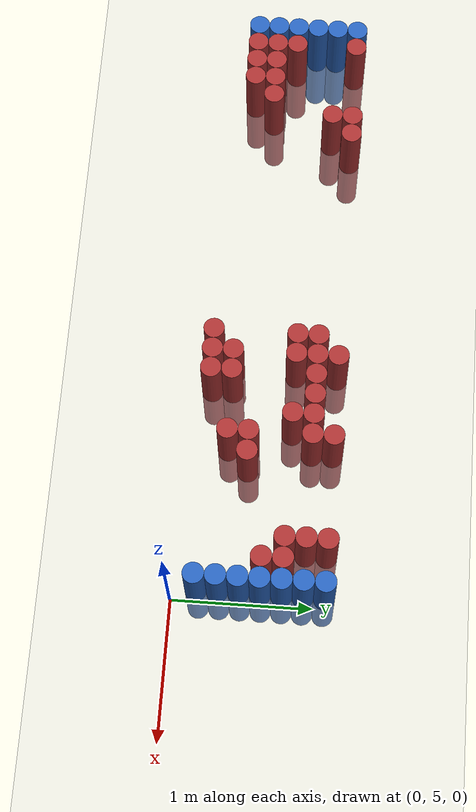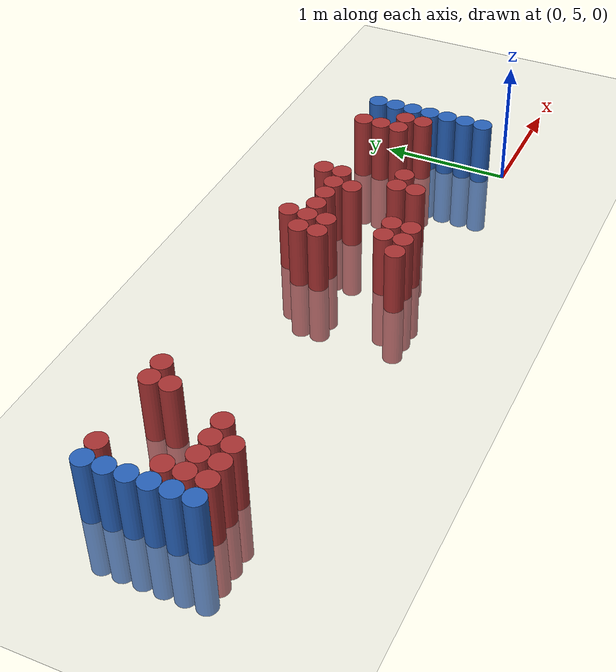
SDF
<sdf version="1.6">
 <world name="default">
  <model name="ground_plane">
   <static>1</static>
   <link name="link">
    <collision name="collision">
     <geometry><plane><normal>0 0 1</normal><size>100 100</size></plane></geometry>
     <surface><friction><ode><mu>100</mu><mu2>50</mu2></ode></friction></surface>
    </collision>
    <visual name="visual">
     <cast_shadows>0</cast_shadows>
     <geometry><plane><normal>0 0 1</normal><size>100 100</size></plane></geometry>
     <material>
      <script><uri>file://media/materials/scripts/gazebo.material</uri><name>Gazebo/Grey</name></script>
     </material>
    </visual>
   </link>
  </model>
  <model name="unit_cylinder_97">
   <static>1</static>
   <pose>-4.425000 5.325000 0.000000 0.000000 0.000000 0.000000</pose>
   <link name="link">
    <inertial>
     <mass>1</mass>
     <inertia><ixx>0.145833</ixx><ixy>0</ixy><ixz>0</ixz><iyy>0.145833</iyy><iyz>0</iyz><izz>0.125</izz></inertia>
    </inertial>
    <collision name="collision">
     <geometry><cylinder><radius>0.075000</radius><length>1</length></cylinder></geometry>
    </collision>
    <visual name="visual">
     <geometry><cylinder><radius>0.075000</radius><length>1</length></cylinder></geometry>
     <material>
      <ambient>0.152000 0.379000 0.720000 1</ambient>
      <diffuse>0.152000 0.379000 0.720000 1</diffuse>
     </material>
     <material>
      <script><name>Gazebo/Grey</name><uri>file://media/materials/scripts/gazebo.material</uri></script>
     </material>
    </visual>
   </link>
  </model>
  <model name="unit_cylinder_98">
   <static>1</static>
   <pose>-4.425000 5.475000 0.000000 0.000000 0.000000 0.000000</pose>
   <link name="link">
    <inertial>
     <mass>1</mass>
     <inertia><ixx>0.145833</ixx><ixy>0</ixy><ixz>0</ixz><iyy>0.145833</iyy><iyz>0</iyz><izz>0.125</izz></inertia>
    </inertial>
    <collision name="collision">
     <geometry><cylinder><radius>0.075000</radius><length>1</length></cylinder></geometry>
    </collision>
    <visual name="visual">
     <geometry><cylinder><radius>0.075000</radius><length>1</length></cylinder></geometry>
     <material>
      <ambient>0.152000 0.379000 0.720000 1</ambient>
      <diffuse>0.152000 0.379000 0.720000 1</diffuse>
     </material>
     <material>
      <script><name>Gazebo/Grey</name><uri>file://media/materials/scripts/gazebo.material</uri></script>
     </material>
    </visual>
   </link>
  </model>
  <model name="unit_cylinder_99">
   <static>1</static>
   <pose>-4.425000 5.625000 0.000000 0.000000 0.000000 0.000000</pose>
   <link name="link">
    <inertial>
     <mass>1</mass>
     <inertia><ixx>0.145833</ixx><ixy>0</ixy><ixz>0</ixz><iyy>0.145833</iyy><iyz>0</iyz><izz>0.125</izz></inertia>
    </inertial>
    <collision name="collision">
     <geometry><cylinder><radius>0.075000</radius><length>1</length></cylinder></geometry>
    </collision>
    <visual name="visual">
     <geometry><cylinder><radius>0.075000</radius><length>1</length></cylinder></geometry>
     <material>
      <ambient>0.152000 0.379000 0.720000 1</ambient>
      <diffuse>0.152000 0.379000 0.720000 1</diffuse>
     </material>
     <material>
      <script><name>Gazebo/Grey</name><uri>file://media/materials/scripts/gazebo.material</uri></script>
     </material>
    </visual>
   </link>
  </model>
  <model name="unit_cylinder_100">
   <static>1</static>
   <pose>-4.425000 5.775000 0.000000 0.000000 0.000000 0.000000</pose>
   <link name="link">
    <inertial>
     <mass>1</mass>
     <inertia><ixx>0.145833</ixx><ixy>0</ixy><ixz>0</ixz><iyy>0.145833</iyy><iyz>0</iyz><izz>0.125</izz></inertia>
    </inertial>
    <collision name="collision">
     <geometry><cylinder><radius>0.075000</radius><length>1</length></cylinder></geometry>
    </collision>
    <visual name="visual">
     <geometry><cylinder><radius>0.075000</radius><length>1</length></cylinder></geometry>
     <material>
      <ambient>0.152000 0.379000 0.720000 1</ambient>
      <diffuse>0.152000 0.379000 0.720000 1</diffuse>
     </material>
     <material>
      <script><name>Gazebo/Grey</name><uri>file://media/materials/scripts/gazebo.material</uri></script>
     </material>
    </visual>
   </link>
  </model>
  <model name="unit_cylinder_101">
   <static>1</static>
   <pose>-4.425000 5.925000 0.000000 0.000000 0.000000 0.000000</pose>
   <link name="link">
    <inertial>
     <mass>1</mass>
     <inertia><ixx>0.145833</ixx><ixy>0</ixy><ixz>0</ixz><iyy>0.145833</iyy><iyz>0</iyz><izz>0.125</izz></inertia>
    </inertial>
    <collision name="collision">
     <geometry><cylinder><radius>0.075000</radius><length>1</length></cylinder></geometry>
    </collision>
    <visual name="visual">
     <geometry><cylinder><radius>0.075000</radius><length>1</length></cylinder></geometry>
     <material>
      <ambient>0.152000 0.379000 0.720000 1</ambient>
      <diffuse>0.152000 0.379000 0.720000 1</diffuse>
     </material>
     <material>
      <script><name>Gazebo/Grey</name><uri>file://media/materials/scripts/gazebo.material</uri></script>
     </material>
    </visual>
   </link>
  </model>
  <model name="unit_cylinder_102">
   <static>1</static>
   <pose>-4.425000 6.075000 0.000000 0.000000 0.000000 0.000000</pose>
   <link name="link">
    <inertial>
     <mass>1</mass>
     <inertia><ixx>0.145833</ixx><ixy>0</ixy><ixz>0</ixz><iyy>0.145833</iyy><iyz>0</iyz><izz>0.125</izz></inertia>
    </inertial>
    <collision name="collision">
     <geometry><cylinder><radius>0.075000</radius><length>1</length></cylinder></geometry>
    </collision>
    <visual name="visual">
     <geometry><cylinder><radius>0.075000</radius><length>1</length></cylinder></geometry>
     <material>
      <ambient>0.152000 0.379000 0.720000 1</ambient>
      <diffuse>0.152000 0.379000 0.720000 1</diffuse>
     </material>
     <material>
      <script><name>Gazebo/Grey</name><uri>file://media/materials/scripts/gazebo.material</uri></script>
     </material>
    </visual>
   </link>
  </model>
  <model name="unit_cylinder_127">
   <static>1</static>
   <pose>-4.275000 5.325000 0.000000 0.000000 0.000000 0.000000</pose>
   <link name="link">
    <inertial>
     <mass>1</mass>
     <inertia><ixx>0.145833</ixx><ixy>0</ixy><ixz>0</ixz><iyy>0.145833</iyy><iyz>0</iyz><izz>0.125</izz></inertia>
    </inertial>
    <collision name="collision">
     <geometry><cylinder><radius>0.075000</radius><length>1</length></cylinder></geometry>
    </collision>
    <visual name="visual">
     <geometry><cylinder><radius>0.075000</radius><length>1</length></cylinder></geometry>
     <material>
      <ambient>0.648000 0.192000 0.192000 1</ambient>
      <diffuse>0.648000 0.192000 0.192000 1</diffuse>
     </material>
     <material>
      <script><name>Gazebo/Grey</name><uri>file://media/materials/scripts/gazebo.material</uri></script>
     </material>
    </visual>
   </link>
  </model>
  <model name="unit_cylinder_128">
   <static>1</static>
   <pose>-4.275000 5.475000 0.000000 0.000000 0.000000 0.000000</pose>
   <link name="link">
    <inertial>
     <mass>1</mass>
     <inertia><ixx>0.145833</ixx><ixy>0</ixy><ixz>0</ixz><iyy>0.145833</iyy><iyz>0</iyz><izz>0.125</izz></inertia>
    </inertial>
    <collision name="collision">
     <geometry><cylinder><radius>0.075000</radius><length>1</length></cylinder></geometry>
    </collision>
    <visual name="visual">
     <geometry><cylinder><radius>0.075000</radius><length>1</length></cylinder></geometry>
     <material>
      <ambient>0.648000 0.192000 0.192000 1</ambient>
      <diffuse>0.648000 0.192000 0.192000 1</diffuse>
     </material>
     <material>
      <script><name>Gazebo/Grey</name><uri>file://media/materials/scripts/gazebo.material</uri></script>
     </material>
    </visual>
   </link>
  </model>
  <model name="unit_cylinder_129">
   <static>1</static>
   <pose>-4.275000 5.625000 0.000000 0.000000 0.000000 0.000000</pose>
   <link name="link">
    <inertial>
     <mass>1</mass>
     <inertia><ixx>0.145833</ixx><ixy>0</ixy><ixz>0</ixz><iyy>0.145833</iyy><iyz>0</iyz><izz>0.125</izz></inertia>
    </inertial>
    <collision name="collision">
     <geometry><cylinder><radius>0.075000</radius><length>1</length></cylinder></geometry>
    </collision>
    <visual name="visual">
     <geometry><cylinder><radius>0.075000</radius><length>1</length></cylinder></geometry>
     <material>
      <ambient>0.648000 0.192000 0.192000 1</ambient>
      <diffuse>0.648000 0.192000 0.192000 1</diffuse>
     </material>
     <material>
      <script><name>Gazebo/Grey</name><uri>file://media/materials/scripts/gazebo.material</uri></script>
     </material>
    </visual>
   </link>
  </model>
  <model name="unit_cylinder_130">
   <static>1</static>
   <pose>-4.275000 6.075000 0.000000 0.000000 0.000000 0.000000</pose>
   <link name="link">
    <inertial>
     <mass>1</mass>
     <inertia><ixx>0.145833</ixx><ixy>0</ixy><ixz>0</ixz><iyy>0.145833</iyy><iyz>0</iyz><izz>0.125</izz></inertia>
    </inertial>
    <collision name="collision">
     <geometry><cylinder><radius>0.075000</radius><length>1</length></cylinder></geometry>
    </collision>
    <visual name="visual">
     <geometry><cylinder><radius>0.075000</radius><length>1</length></cylinder></geometry>
     <material>
      <ambient>0.648000 0.192000 0.192000 1</ambient>
      <diffuse>0.648000 0.192000 0.192000 1</diffuse>
     </material>
     <material>
      <script><name>Gazebo/Grey</name><uri>file://media/materials/scripts/gazebo.material</uri></script>
     </material>
    </visual>
   </link>
  </model>
  <model name="unit_cylinder_138">
   <static>1</static>
   <pose>-4.125000 5.325000 0.000000 0.000000 0.000000 0.000000</pose>
   <link name="link">
    <inertial>
     <mass>1</mass>
     <inertia><ixx>0.145833</ixx><ixy>0</ixy><ixz>0</ixz><iyy>0.145833</iyy><iyz>0</iyz><izz>0.125</izz></inertia>
    </inertial>
    <collision name="collision">
     <geometry><cylinder><radius>0.075000</radius><length>1</length></cylinder></geometry>
    </collision>
    <visual name="visual">
     <geometry><cylinder><radius>0.075000</radius><length>1</length></cylinder></geometry>
     <material>
      <ambient>0.648000 0.192000 0.192000 1</ambient>
      <diffuse>0.648000 0.192000 0.192000 1</diffuse>
     </material>
     <material>
      <script><name>Gazebo/Grey</name><uri>file://media/materials/scripts/gazebo.material</uri></script>
     </material>
    </visual>
   </link>
  </model>
  <model name="unit_cylinder_139">
   <static>1</static>
   <pose>-4.125000 5.475000 0.000000 0.000000 0.000000 0.000000</pose>
   <link name="link">
    <inertial>
     <mass>1</mass>
     <inertia><ixx>0.145833</ixx><ixy>0</ixy><ixz>0</ixz><iyy>0.145833</iyy><iyz>0</iyz><izz>0.125</izz></inertia>
    </inertial>
    <collision name="collision">
     <geometry><cylinder><radius>0.075000</radius><length>1</length></cylinder></geometry>
    </collision>
    <visual name="visual">
     <geometry><cylinder><radius>0.075000</radius><length>1</length></cylinder></geometry>
     <material>
      <ambient>0.648000 0.192000 0.192000 1</ambient>
      <diffuse>0.648000 0.192000 0.192000 1</diffuse>
     </material>
     <material>
      <script><name>Gazebo/Grey</name><uri>file://media/materials/scripts/gazebo.material</uri></script>
     </material>
    </visual>
   </link>
  </model>
  <model name="unit_cylinder_143">
   <static>1</static>
   <pose>-3.975000 5.325000 0.000000 0.000000 0.000000 0.000000</pose>
   <link name="link">
    <inertial>
     <mass>1</mass>
     <inertia><ixx>0.145833</ixx><ixy>0</ixy><ixz>0</ixz><iyy>0.145833</iyy><iyz>0</iyz><izz>0.125</izz></inertia>
    </inertial>
    <collision name="collision">
     <geometry><cylinder><radius>0.075000</radius><length>1</length></cylinder></geometry>
    </collision>
    <visual name="visual">
     <geometry><cylinder><radius>0.075000</radius><length>1</length></cylinder></geometry>
     <material>
      <ambient>0.648000 0.192000 0.192000 1</ambient>
      <diffuse>0.648000 0.192000 0.192000 1</diffuse>
     </material>
     <material>
      <script><name>Gazebo/Grey</name><uri>file://media/materials/scripts/gazebo.material</uri></script>
     </material>
    </visual>
   </link>
  </model>
  <model name="unit_cylinder_144">
   <static>1</static>
   <pose>-3.975000 5.475000 0.000000 0.000000 0.000000 0.000000</pose>
   <link name="link">
    <inertial>
     <mass>1</mass>
     <inertia><ixx>0.145833</ixx><ixy>0</ixy><ixz>0</ixz><iyy>0.145833</iyy><iyz>0</iyz><izz>0.125</izz></inertia>
    </inertial>
    <collision name="collision">
     <geometry><cylinder><radius>0.075000</radius><length>1</length></cylinder></geometry>
    </collision>
    <visual name="visual">
     <geometry><cylinder><radius>0.075000</radius><length>1</length></cylinder></geometry>
     <material>
      <ambient>0.648000 0.192000 0.192000 1</ambient>
      <diffuse>0.648000 0.192000 0.192000 1</diffuse>
     </material>
     <material>
      <script><name>Gazebo/Grey</name><uri>file://media/materials/scripts/gazebo.material</uri></script>
     </material>
    </visual>
   </link>
  </model>
  <model name="unit_cylinder_147">
   <static>1</static>
   <pose>-3.825000 5.475000 0.000000 0.000000 0.000000 0.000000</pose>
   <link name="link">
    <inertial>
     <mass>1</mass>
     <inertia><ixx>0.145833</ixx><ixy>0</ixy><ixz>0</ixz><iyy>0.145833</iyy><iyz>0</iyz><izz>0.125</izz></inertia>
    </inertial>
    <collision name="collision">
     <geometry><cylinder><radius>0.075000</radius><length>1</length></cylinder></geometry>
    </collision>
    <visual name="visual">
     <geometry><cylinder><radius>0.075000</radius><length>1</length></cylinder></geometry>
     <material>
      <ambient>0.648000 0.192000 0.192000 1</ambient>
      <diffuse>0.648000 0.192000 0.192000 1</diffuse>
     </material>
     <material>
      <script><name>Gazebo/Grey</name><uri>file://media/materials/scripts/gazebo.material</uri></script>
     </material>
    </visual>
   </link>
  </model>
  <model name="unit_cylinder_149">
   <static>1</static>
   <pose>-3.675000 5.925000 0.000000 0.000000 0.000000 0.000000</pose>
   <link name="link">
    <inertial>
     <mass>1</mass>
     <inertia><ixx>0.145833</ixx><ixy>0</ixy><ixz>0</ixz><iyy>0.145833</iyy><iyz>0</iyz><izz>0.125</izz></inertia>
    </inertial>
    <collision name="collision">
     <geometry><cylinder><radius>0.075000</radius><length>1</length></cylinder></geometry>
    </collision>
    <visual name="visual">
     <geometry><cylinder><radius>0.075000</radius><length>1</length></cylinder></geometry>
     <material>
      <ambient>0.648000 0.192000 0.192000 1</ambient>
      <diffuse>0.648000 0.192000 0.192000 1</diffuse>
     </material>
     <material>
      <script><name>Gazebo/Grey</name><uri>file://media/materials/scripts/gazebo.material</uri></script>
     </material>
    </visual>
   </link>
  </model>
  <model name="unit_cylinder_150">
   <static>1</static>
   <pose>-3.675000 6.075000 0.000000 0.000000 0.000000 0.000000</pose>
   <link name="link">
    <inertial>
     <mass>1</mass>
     <inertia><ixx>0.145833</ixx><ixy>0</ixy><ixz>0</ixz><iyy>0.145833</iyy><iyz>0</iyz><izz>0.125</izz></inertia>
    </inertial>
    <collision name="collision">
     <geometry><cylinder><radius>0.075000</radius><length>1</length></cylinder></geometry>
    </collision>
    <visual name="visual">
     <geometry><cylinder><radius>0.075000</radius><length>1</length></cylinder></geometry>
     <material>
      <ambient>0.648000 0.192000 0.192000 1</ambient>
      <diffuse>0.648000 0.192000 0.192000 1</diffuse>
     </material>
     <material>
      <script><name>Gazebo/Grey</name><uri>file://media/materials/scripts/gazebo.material</uri></script>
     </material>
    </visual>
   </link>
  </model>
  <model name="unit_cylinder_153">
   <static>1</static>
   <pose>-3.525000 6.075000 0.000000 0.000000 0.000000 0.000000</pose>
   <link name="link">
    <inertial>
     <mass>1</mass>
     <inertia><ixx>0.145833</ixx><ixy>0</ixy><ixz>0</ixz><iyy>0.145833</iyy><iyz>0</iyz><izz>0.125</izz></inertia>
    </inertial>
    <collision name="collision">
     <geometry><cylinder><radius>0.075000</radius><length>1</length></cylinder></geometry>
    </collision>
    <visual name="visual">
     <geometry><cylinder><radius>0.075000</radius><length>1</length></cylinder></geometry>
     <material>
      <ambient>0.648000 0.192000 0.192000 1</ambient>
      <diffuse>0.648000 0.192000 0.192000 1</diffuse>
     </material>
     <material>
      <script><name>Gazebo/Grey</name><uri>file://media/materials/scripts/gazebo.material</uri></script>
     </material>
    </visual>
   </link>
  </model>
  <model name="unit_cylinder_173">
   <static>1</static>
   <pose>-1.875000 5.175000 0.000000 0.000000 0.000000 0.000000</pose>
   <link name="link">
    <inertial>
     <mass>1</mass>
     <inertia><ixx>0.145833</ixx><ixy>0</ixy><ixz>0</ixz><iyy>0.145833</iyy><iyz>0</iyz><izz>0.125</izz></inertia>
    </inertial>
    <collision name="collision">
     <geometry><cylinder><radius>0.075000</radius><length>1</length></cylinder></geometry>
    </collision>
    <visual name="visual">
     <geometry><cylinder><radius>0.075000</radius><length>1</length></cylinder></geometry>
     <material>
      <ambient>0.648000 0.192000 0.192000 1</ambient>
      <diffuse>0.648000 0.192000 0.192000 1</diffuse>
     </material>
     <material>
      <script><name>Gazebo/Grey</name><uri>file://media/materials/scripts/gazebo.material</uri></script>
     </material>
    </visual>
   </link>
  </model>
  <model name="unit_cylinder_174">
   <static>1</static>
   <pose>-1.875000 5.775000 0.000000 0.000000 0.000000 0.000000</pose>
   <link name="link">
    <inertial>
     <mass>1</mass>
     <inertia><ixx>0.145833</ixx><ixy>0</ixy><ixz>0</ixz><iyy>0.145833</iyy><iyz>0</iyz><izz>0.125</izz></inertia>
    </inertial>
    <collision name="collision">
     <geometry><cylinder><radius>0.075000</radius><length>1</length></cylinder></geometry>
    </collision>
    <visual name="visual">
     <geometry><cylinder><radius>0.075000</radius><length>1</length></cylinder></geometry>
     <material>
      <ambient>0.648000 0.192000 0.192000 1</ambient>
      <diffuse>0.648000 0.192000 0.192000 1</diffuse>
     </material>
     <material>
      <script><name>Gazebo/Grey</name><uri>file://media/materials/scripts/gazebo.material</uri></script>
     </material>
    </visual>
   </link>
  </model>
  <model name="unit_cylinder_175">
   <static>1</static>
   <pose>-1.875000 5.925000 0.000000 0.000000 0.000000 0.000000</pose>
   <link name="link">
    <inertial>
     <mass>1</mass>
     <inertia><ixx>0.145833</ixx><ixy>0</ixy><ixz>0</ixz><iyy>0.145833</iyy><iyz>0</iyz><izz>0.125</izz></inertia>
    </inertial>
    <collision name="collision">
     <geometry><cylinder><radius>0.075000</radius><length>1</length></cylinder></geometry>
    </collision>
    <visual name="visual">
     <geometry><cylinder><radius>0.075000</radius><length>1</length></cylinder></geometry>
     <material>
      <ambient>0.648000 0.192000 0.192000 1</ambient>
      <diffuse>0.648000 0.192000 0.192000 1</diffuse>
     </material>
     <material>
      <script><name>Gazebo/Grey</name><uri>file://media/materials/scripts/gazebo.material</uri></script>
     </material>
    </visual>
   </link>
  </model>
  <model name="unit_cylinder_181">
   <static>1</static>
   <pose>-1.725000 5.175000 0.000000 0.000000 0.000000 0.000000</pose>
   <link name="link">
    <inertial>
     <mass>1</mass>
     <inertia><ixx>0.145833</ixx><ixy>0</ixy><ixz>0</ixz><iyy>0.145833</iyy><iyz>0</iyz><izz>0.125</izz></inertia>
    </inertial>
    <collision name="collision">
     <geometry><cylinder><radius>0.075000</radius><length>1</length></cylinder></geometry>
    </collision>
    <visual name="visual">
     <geometry><cylinder><radius>0.075000</radius><length>1</length></cylinder></geometry>
     <material>
      <ambient>0.648000 0.192000 0.192000 1</ambient>
      <diffuse>0.648000 0.192000 0.192000 1</diffuse>
     </material>
     <material>
      <script><name>Gazebo/Grey</name><uri>file://media/materials/scripts/gazebo.material</uri></script>
     </material>
    </visual>
   </link>
  </model>
  <model name="unit_cylinder_182">
   <static>1</static>
   <pose>-1.725000 5.325000 0.000000 0.000000 0.000000 0.000000</pose>
   <link name="link">
    <inertial>
     <mass>1</mass>
     <inertia><ixx>0.145833</ixx><ixy>0</ixy><ixz>0</ixz><iyy>0.145833</iyy><iyz>0</iyz><izz>0.125</izz></inertia>
    </inertial>
    <collision name="collision">
     <geometry><cylinder><radius>0.075000</radius><length>1</length></cylinder></geometry>
    </collision>
    <visual name="visual">
     <geometry><cylinder><radius>0.075000</radius><length>1</length></cylinder></geometry>
     <material>
      <ambient>0.648000 0.192000 0.192000 1</ambient>
      <diffuse>0.648000 0.192000 0.192000 1</diffuse>
     </material>
     <material>
      <script><name>Gazebo/Grey</name><uri>file://media/materials/scripts/gazebo.material</uri></script>
     </material>
    </visual>
   </link>
  </model>
  <model name="unit_cylinder_183">
   <static>1</static>
   <pose>-1.725000 5.775000 0.000000 0.000000 0.000000 0.000000</pose>
   <link name="link">
    <inertial>
     <mass>1</mass>
     <inertia><ixx>0.145833</ixx><ixy>0</ixy><ixz>0</ixz><iyy>0.145833</iyy><iyz>0</iyz><izz>0.125</izz></inertia>
    </inertial>
    <collision name="collision">
     <geometry><cylinder><radius>0.075000</radius><length>1</length></cylinder></geometry>
    </collision>
    <visual name="visual">
     <geometry><cylinder><radius>0.075000</radius><length>1</length></cylinder></geometry>
     <material>
      <ambient>0.648000 0.192000 0.192000 1</ambient>
      <diffuse>0.648000 0.192000 0.192000 1</diffuse>
     </material>
     <material>
      <script><name>Gazebo/Grey</name><uri>file://media/materials/scripts/gazebo.material</uri></script>
     </material>
    </visual>
   </link>
  </model>
  <model name="unit_cylinder_184">
   <static>1</static>
   <pose>-1.725000 5.925000 0.000000 0.000000 0.000000 0.000000</pose>
   <link name="link">
    <inertial>
     <mass>1</mass>
     <inertia><ixx>0.145833</ixx><ixy>0</ixy><ixz>0</ixz><iyy>0.145833</iyy><iyz>0</iyz><izz>0.125</izz></inertia>
    </inertial>
    <collision name="collision">
     <geometry><cylinder><radius>0.075000</radius><length>1</length></cylinder></geometry>
    </collision>
    <visual name="visual">
     <geometry><cylinder><radius>0.075000</radius><length>1</length></cylinder></geometry>
     <material>
      <ambient>0.648000 0.192000 0.192000 1</ambient>
      <diffuse>0.648000 0.192000 0.192000 1</diffuse>
     </material>
     <material>
      <script><name>Gazebo/Grey</name><uri>file://media/materials/scripts/gazebo.material</uri></script>
     </material>
    </visual>
   </link>
  </model>
  <model name="unit_cylinder_185">
   <static>1</static>
   <pose>-1.725000 6.075000 0.000000 0.000000 0.000000 0.000000</pose>
   <link name="link">
    <inertial>
     <mass>1</mass>
     <inertia><ixx>0.145833</ixx><ixy>0</ixy><ixz>0</ixz><iyy>0.145833</iyy><iyz>0</iyz><izz>0.125</izz></inertia>
    </inertial>
    <collision name="collision">
     <geometry><cylinder><radius>0.075000</radius><length>1</length></cylinder></geometry>
    </collision>
    <visual name="visual">
     <geometry><cylinder><radius>0.075000</radius><length>1</length></cylinder></geometry>
     <material>
      <ambient>0.648000 0.192000 0.192000 1</ambient>
      <diffuse>0.648000 0.192000 0.192000 1</diffuse>
     </material>
     <material>
      <script><name>Gazebo/Grey</name><uri>file://media/materials/scripts/gazebo.material</uri></script>
     </material>
    </visual>
   </link>
  </model>
  <model name="unit_cylinder_190">
   <static>1</static>
   <pose>-1.575000 5.175000 0.000000 0.000000 0.000000 0.000000</pose>
   <link name="link">
    <inertial>
     <mass>1</mass>
     <inertia><ixx>0.145833</ixx><ixy>0</ixy><ixz>0</ixz><iyy>0.145833</iyy><iyz>0</iyz><izz>0.125</izz></inertia>
    </inertial>
    <collision name="collision">
     <geometry><cylinder><radius>0.075000</radius><length>1</length></cylinder></geometry>
    </collision>
    <visual name="visual">
     <geometry><cylinder><radius>0.075000</radius><length>1</length></cylinder></geometry>
     <material>
      <ambient>0.648000 0.192000 0.192000 1</ambient>
      <diffuse>0.648000 0.192000 0.192000 1</diffuse>
     </material>
     <material>
      <script><name>Gazebo/Grey</name><uri>file://media/materials/scripts/gazebo.material</uri></script>
     </material>
    </visual>
   </link>
  </model>
  <model name="unit_cylinder_191">
   <static>1</static>
   <pose>-1.575000 5.325000 0.000000 0.000000 0.000000 0.000000</pose>
   <link name="link">
    <inertial>
     <mass>1</mass>
     <inertia><ixx>0.145833</ixx><ixy>0</ixy><ixz>0</ixz><iyy>0.145833</iyy><iyz>0</iyz><izz>0.125</izz></inertia>
    </inertial>
    <collision name="collision">
     <geometry><cylinder><radius>0.075000</radius><length>1</length></cylinder></geometry>
    </collision>
    <visual name="visual">
     <geometry><cylinder><radius>0.075000</radius><length>1</length></cylinder></geometry>
     <material>
      <ambient>0.648000 0.192000 0.192000 1</ambient>
      <diffuse>0.648000 0.192000 0.192000 1</diffuse>
     </material>
     <material>
      <script><name>Gazebo/Grey</name><uri>file://media/materials/scripts/gazebo.material</uri></script>
     </material>
    </visual>
   </link>
  </model>
  <model name="unit_cylinder_192">
   <static>1</static>
   <pose>-1.575000 5.925000 0.000000 0.000000 0.000000 0.000000</pose>
   <link name="link">
    <inertial>
     <mass>1</mass>
     <inertia><ixx>0.145833</ixx><ixy>0</ixy><ixz>0</ixz><iyy>0.145833</iyy><iyz>0</iyz><izz>0.125</izz></inertia>
    </inertial>
    <collision name="collision">
     <geometry><cylinder><radius>0.075000</radius><length>1</length></cylinder></geometry>
    </collision>
    <visual name="visual">
     <geometry><cylinder><radius>0.075000</radius><length>1</length></cylinder></geometry>
     <material>
      <ambient>0.648000 0.192000 0.192000 1</ambient>
      <diffuse>0.648000 0.192000 0.192000 1</diffuse>
     </material>
     <material>
      <script><name>Gazebo/Grey</name><uri>file://media/materials/scripts/gazebo.material</uri></script>
     </material>
    </visual>
   </link>
  </model>
  <model name="unit_cylinder_201">
   <static>1</static>
   <pose>-1.425000 5.925000 0.000000 0.000000 0.000000 0.000000</pose>
   <link name="link">
    <inertial>
     <mass>1</mass>
     <inertia><ixx>0.145833</ixx><ixy>0</ixy><ixz>0</ixz><iyy>0.145833</iyy><iyz>0</iyz><izz>0.125</izz></inertia>
    </inertial>
    <collision name="collision">
     <geometry><cylinder><radius>0.075000</radius><length>1</length></cylinder></geometry>
    </collision>
    <visual name="visual">
     <geometry><cylinder><radius>0.075000</radius><length>1</length></cylinder></geometry>
     <material>
      <ambient>0.648000 0.192000 0.192000 1</ambient>
      <diffuse>0.648000 0.192000 0.192000 1</diffuse>
     </material>
     <material>
      <script><name>Gazebo/Grey</name><uri>file://media/materials/scripts/gazebo.material</uri></script>
     </material>
    </visual>
   </link>
  </model>
  <model name="unit_cylinder_210">
   <static>1</static>
   <pose>-1.275000 5.775000 0.000000 0.000000 0.000000 0.000000</pose>
   <link name="link">
    <inertial>
     <mass>1</mass>
     <inertia><ixx>0.145833</ixx><ixy>0</ixy><ixz>0</ixz><iyy>0.145833</iyy><iyz>0</iyz><izz>0.125</izz></inertia>
    </inertial>
    <collision name="collision">
     <geometry><cylinder><radius>0.075000</radius><length>1</length></cylinder></geometry>
    </collision>
    <visual name="visual">
     <geometry><cylinder><radius>0.075000</radius><length>1</length></cylinder></geometry>
     <material>
      <ambient>0.648000 0.192000 0.192000 1</ambient>
      <diffuse>0.648000 0.192000 0.192000 1</diffuse>
     </material>
     <material>
      <script><name>Gazebo/Grey</name><uri>file://media/materials/scripts/gazebo.material</uri></script>
     </material>
    </visual>
   </link>
  </model>
  <model name="unit_cylinder_211">
   <static>1</static>
   <pose>-1.275000 5.925000 0.000000 0.000000 0.000000 0.000000</pose>
   <link name="link">
    <inertial>
     <mass>1</mass>
     <inertia><ixx>0.145833</ixx><ixy>0</ixy><ixz>0</ixz><iyy>0.145833</iyy><iyz>0</iyz><izz>0.125</izz></inertia>
    </inertial>
    <collision name="collision">
     <geometry><cylinder><radius>0.075000</radius><length>1</length></cylinder></geometry>
    </collision>
    <visual name="visual">
     <geometry><cylinder><radius>0.075000</radius><length>1</length></cylinder></geometry>
     <material>
      <ambient>0.648000 0.192000 0.192000 1</ambient>
      <diffuse>0.648000 0.192000 0.192000 1</diffuse>
     </material>
     <material>
      <script><name>Gazebo/Grey</name><uri>file://media/materials/scripts/gazebo.material</uri></script>
     </material>
    </visual>
   </link>
  </model>
  <model name="unit_cylinder_220">
   <static>1</static>
   <pose>-1.125000 5.325000 0.000000 0.000000 0.000000 0.000000</pose>
   <link name="link">
    <inertial>
     <mass>1</mass>
     <inertia><ixx>0.145833</ixx><ixy>0</ixy><ixz>0</ixz><iyy>0.145833</iyy><iyz>0</iyz><izz>0.125</izz></inertia>
    </inertial>
    <collision name="collision">
     <geometry><cylinder><radius>0.075000</radius><length>1</length></cylinder></geometry>
    </collision>
    <visual name="visual">
     <geometry><cylinder><radius>0.075000</radius><length>1</length></cylinder></geometry>
     <material>
      <ambient>0.648000 0.192000 0.192000 1</ambient>
      <diffuse>0.648000 0.192000 0.192000 1</diffuse>
     </material>
     <material>
      <script><name>Gazebo/Grey</name><uri>file://media/materials/scripts/gazebo.material</uri></script>
     </material>
    </visual>
   </link>
  </model>
  <model name="unit_cylinder_221">
   <static>1</static>
   <pose>-1.125000 5.475000 0.000000 0.000000 0.000000 0.000000</pose>
   <link name="link">
    <inertial>
     <mass>1</mass>
     <inertia><ixx>0.145833</ixx><ixy>0</ixy><ixz>0</ixz><iyy>0.145833</iyy><iyz>0</iyz><izz>0.125</izz></inertia>
    </inertial>
    <collision name="collision">
     <geometry><cylinder><radius>0.075000</radius><length>1</length></cylinder></geometry>
    </collision>
    <visual name="visual">
     <geometry><cylinder><radius>0.075000</radius><length>1</length></cylinder></geometry>
     <material>
      <ambient>0.648000 0.192000 0.192000 1</ambient>
      <diffuse>0.648000 0.192000 0.192000 1</diffuse>
     </material>
     <material>
      <script><name>Gazebo/Grey</name><uri>file://media/materials/scripts/gazebo.material</uri></script>
     </material>
    </visual>
   </link>
  </model>
  <model name="unit_cylinder_222">
   <static>1</static>
   <pose>-1.125000 5.925000 0.000000 0.000000 0.000000 0.000000</pose>
   <link name="link">
    <inertial>
     <mass>1</mass>
     <inertia><ixx>0.145833</ixx><ixy>0</ixy><ixz>0</ixz><iyy>0.145833</iyy><iyz>0</iyz><izz>0.125</izz></inertia>
    </inertial>
    <collision name="collision">
     <geometry><cylinder><radius>0.075000</radius><length>1</length></cylinder></geometry>
    </collision>
    <visual name="visual">
     <geometry><cylinder><radius>0.075000</radius><length>1</length></cylinder></geometry>
     <material>
      <ambient>0.648000 0.192000 0.192000 1</ambient>
      <diffuse>0.648000 0.192000 0.192000 1</diffuse>
     </material>
     <material>
      <script><name>Gazebo/Grey</name><uri>file://media/materials/scripts/gazebo.material</uri></script>
     </material>
    </visual>
   </link>
  </model>
  <model name="unit_cylinder_223">
   <static>1</static>
   <pose>-1.125000 6.075000 0.000000 0.000000 0.000000 0.000000</pose>
   <link name="link">
    <inertial>
     <mass>1</mass>
     <inertia><ixx>0.145833</ixx><ixy>0</ixy><ixz>0</ixz><iyy>0.145833</iyy><iyz>0</iyz><izz>0.125</izz></inertia>
    </inertial>
    <collision name="collision">
     <geometry><cylinder><radius>0.075000</radius><length>1</length></cylinder></geometry>
    </collision>
    <visual name="visual">
     <geometry><cylinder><radius>0.075000</radius><length>1</length></cylinder></geometry>
     <material>
      <ambient>0.648000 0.192000 0.192000 1</ambient>
      <diffuse>0.648000 0.192000 0.192000 1</diffuse>
     </material>
     <material>
      <script><name>Gazebo/Grey</name><uri>file://media/materials/scripts/gazebo.material</uri></script>
     </material>
    </visual>
   </link>
  </model>
  <model name="unit_cylinder_228">
   <static>1</static>
   <pose>-0.975000 5.475000 0.000000 0.000000 0.000000 0.000000</pose>
   <link name="link">
    <inertial>
     <mass>1</mass>
     <inertia><ixx>0.145833</ixx><ixy>0</ixy><ixz>0</ixz><iyy>0.145833</iyy><iyz>0</iyz><izz>0.125</izz></inertia>
    </inertial>
    <collision name="collision">
     <geometry><cylinder><radius>0.075000</radius><length>1</length></cylinder></geometry>
    </collision>
    <visual name="visual">
     <geometry><cylinder><radius>0.075000</radius><length>1</length></cylinder></geometry>
     <material>
      <ambient>0.648000 0.192000 0.192000 1</ambient>
      <diffuse>0.648000 0.192000 0.192000 1</diffuse>
     </material>
     <material>
      <script><name>Gazebo/Grey</name><uri>file://media/materials/scripts/gazebo.material</uri></script>
     </material>
    </visual>
   </link>
  </model>
  <model name="unit_cylinder_240">
   <static>1</static>
   <pose>-0.375000 5.775000 0.000000 0.000000 0.000000 0.000000</pose>
   <link name="link">
    <inertial>
     <mass>1</mass>
     <inertia><ixx>0.145833</ixx><ixy>0</ixy><ixz>0</ixz><iyy>0.145833</iyy><iyz>0</iyz><izz>0.125</izz></inertia>
    </inertial>
    <collision name="collision">
     <geometry><cylinder><radius>0.075000</radius><length>1</length></cylinder></geometry>
    </collision>
    <visual name="visual">
     <geometry><cylinder><radius>0.075000</radius><length>1</length></cylinder></geometry>
     <material>
      <ambient>0.648000 0.192000 0.192000 1</ambient>
      <diffuse>0.648000 0.192000 0.192000 1</diffuse>
     </material>
     <material>
      <script><name>Gazebo/Grey</name><uri>file://media/materials/scripts/gazebo.material</uri></script>
     </material>
    </visual>
   </link>
  </model>
  <model name="unit_cylinder_241">
   <static>1</static>
   <pose>-0.375000 5.925000 0.000000 0.000000 0.000000 0.000000</pose>
   <link name="link">
    <inertial>
     <mass>1</mass>
     <inertia><ixx>0.145833</ixx><ixy>0</ixy><ixz>0</ixz><iyy>0.145833</iyy><iyz>0</iyz><izz>0.125</izz></inertia>
    </inertial>
    <collision name="collision">
     <geometry><cylinder><radius>0.075000</radius><length>1</length></cylinder></geometry>
    </collision>
    <visual name="visual">
     <geometry><cylinder><radius>0.075000</radius><length>1</length></cylinder></geometry>
     <material>
      <ambient>0.648000 0.192000 0.192000 1</ambient>
      <diffuse>0.648000 0.192000 0.192000 1</diffuse>
     </material>
     <material>
      <script><name>Gazebo/Grey</name><uri>file://media/materials/scripts/gazebo.material</uri></script>
     </material>
    </visual>
   </link>
  </model>
  <model name="unit_cylinder_242">
   <static>1</static>
   <pose>-0.375000 6.075000 0.000000 0.000000 0.000000 0.000000</pose>
   <link name="link">
    <inertial>
     <mass>1</mass>
     <inertia><ixx>0.145833</ixx><ixy>0</ixy><ixz>0</ixz><iyy>0.145833</iyy><iyz>0</iyz><izz>0.125</izz></inertia>
    </inertial>
    <collision name="collision">
     <geometry><cylinder><radius>0.075000</radius><length>1</length></cylinder></geometry>
    </collision>
    <visual name="visual">
     <geometry><cylinder><radius>0.075000</radius><length>1</length></cylinder></geometry>
     <material>
      <ambient>0.648000 0.192000 0.192000 1</ambient>
      <diffuse>0.648000 0.192000 0.192000 1</diffuse>
     </material>
     <material>
      <script><name>Gazebo/Grey</name><uri>file://media/materials/scripts/gazebo.material</uri></script>
     </material>
    </visual>
   </link>
  </model>
  <model name="unit_cylinder_250">
   <static>1</static>
   <pose>-0.225000 5.625000 0.000000 0.000000 0.000000 0.000000</pose>
   <link name="link">
    <inertial>
     <mass>1</mass>
     <inertia><ixx>0.145833</ixx><ixy>0</ixy><ixz>0</ixz><iyy>0.145833</iyy><iyz>0</iyz><izz>0.125</izz></inertia>
    </inertial>
    <collision name="collision">
     <geometry><cylinder><radius>0.075000</radius><length>1</length></cylinder></geometry>
    </collision>
    <visual name="visual">
     <geometry><cylinder><radius>0.075000</radius><length>1</length></cylinder></geometry>
     <material>
      <ambient>0.648000 0.192000 0.192000 1</ambient>
      <diffuse>0.648000 0.192000 0.192000 1</diffuse>
     </material>
     <material>
      <script><name>Gazebo/Grey</name><uri>file://media/materials/scripts/gazebo.material</uri></script>
     </material>
    </visual>
   </link>
  </model>
  <model name="unit_cylinder_251">
   <static>1</static>
   <pose>-0.225000 5.775000 0.000000 0.000000 0.000000 0.000000</pose>
   <link name="link">
    <inertial>
     <mass>1</mass>
     <inertia><ixx>0.145833</ixx><ixy>0</ixy><ixz>0</ixz><iyy>0.145833</iyy><iyz>0</iyz><izz>0.125</izz></inertia>
    </inertial>
    <collision name="collision">
     <geometry><cylinder><radius>0.075000</radius><length>1</length></cylinder></geometry>
    </collision>
    <visual name="visual">
     <geometry><cylinder><radius>0.075000</radius><length>1</length></cylinder></geometry>
     <material>
      <ambient>0.648000 0.192000 0.192000 1</ambient>
      <diffuse>0.648000 0.192000 0.192000 1</diffuse>
     </material>
     <material>
      <script><name>Gazebo/Grey</name><uri>file://media/materials/scripts/gazebo.material</uri></script>
     </material>
    </visual>
   </link>
  </model>
  <model name="unit_cylinder_264">
   <static>1</static>
   <pose>-0.075000 5.175000 0.000000 0.000000 0.000000 0.000000</pose>
   <link name="link">
    <inertial>
     <mass>1</mass>
     <inertia><ixx>0.145833</ixx><ixy>0</ixy><ixz>0</ixz><iyy>0.145833</iyy><iyz>0</iyz><izz>0.125</izz></inertia>
    </inertial>
    <collision name="collision">
     <geometry><cylinder><radius>0.075000</radius><length>1</length></cylinder></geometry>
    </collision>
    <visual name="visual">
     <geometry><cylinder><radius>0.075000</radius><length>1</length></cylinder></geometry>
     <material>
      <ambient>0.152000 0.379000 0.720000 1</ambient>
      <diffuse>0.152000 0.379000 0.720000 1</diffuse>
     </material>
     <material>
      <script><name>Gazebo/Grey</name><uri>file://media/materials/scripts/gazebo.material</uri></script>
     </material>
    </visual>
   </link>
  </model>
  <model name="unit_cylinder_265">
   <static>1</static>
   <pose>-0.075000 5.325000 0.000000 0.000000 0.000000 0.000000</pose>
   <link name="link">
    <inertial>
     <mass>1</mass>
     <inertia><ixx>0.145833</ixx><ixy>0</ixy><ixz>0</ixz><iyy>0.145833</iyy><iyz>0</iyz><izz>0.125</izz></inertia>
    </inertial>
    <collision name="collision">
     <geometry><cylinder><radius>0.075000</radius><length>1</length></cylinder></geometry>
    </collision>
    <visual name="visual">
     <geometry><cylinder><radius>0.075000</radius><length>1</length></cylinder></geometry>
     <material>
      <ambient>0.152000 0.379000 0.720000 1</ambient>
      <diffuse>0.152000 0.379000 0.720000 1</diffuse>
     </material>
     <material>
      <script><name>Gazebo/Grey</name><uri>file://media/materials/scripts/gazebo.material</uri></script>
     </material>
    </visual>
   </link>
  </model>
  <model name="unit_cylinder_266">
   <static>1</static>
   <pose>-0.075000 5.475000 0.000000 0.000000 0.000000 0.000000</pose>
   <link name="link">
    <inertial>
     <mass>1</mass>
     <inertia><ixx>0.145833</ixx><ixy>0</ixy><ixz>0</ixz><iyy>0.145833</iyy><iyz>0</iyz><izz>0.125</izz></inertia>
    </inertial>
    <collision name="collision">
     <geometry><cylinder><radius>0.075000</radius><length>1</length></cylinder></geometry>
    </collision>
    <visual name="visual">
     <geometry><cylinder><radius>0.075000</radius><length>1</length></cylinder></geometry>
     <material>
      <ambient>0.152000 0.379000 0.720000 1</ambient>
      <diffuse>0.152000 0.379000 0.720000 1</diffuse>
     </material>
     <material>
      <script><name>Gazebo/Grey</name><uri>file://media/materials/scripts/gazebo.material</uri></script>
     </material>
    </visual>
   </link>
  </model>
  <model name="unit_cylinder_267">
   <static>1</static>
   <pose>-0.075000 5.625000 0.000000 0.000000 0.000000 0.000000</pose>
   <link name="link">
    <inertial>
     <mass>1</mass>
     <inertia><ixx>0.145833</ixx><ixy>0</ixy><ixz>0</ixz><iyy>0.145833</iyy><iyz>0</iyz><izz>0.125</izz></inertia>
    </inertial>
    <collision name="collision">
     <geometry><cylinder><radius>0.075000</radius><length>1</length></cylinder></geometry>
    </collision>
    <visual name="visual">
     <geometry><cylinder><radius>0.075000</radius><length>1</length></cylinder></geometry>
     <material>
      <ambient>0.152000 0.379000 0.720000 1</ambient>
      <diffuse>0.152000 0.379000 0.720000 1</diffuse>
     </material>
     <material>
      <script><name>Gazebo/Grey</name><uri>file://media/materials/scripts/gazebo.material</uri></script>
     </material>
    </visual>
   </link>
  </model>
  <model name="unit_cylinder_268">
   <static>1</static>
   <pose>-0.075000 5.775000 0.000000 0.000000 0.000000 0.000000</pose>
   <link name="link">
    <inertial>
     <mass>1</mass>
     <inertia><ixx>0.145833</ixx><ixy>0</ixy><ixz>0</ixz><iyy>0.145833</iyy><iyz>0</iyz><izz>0.125</izz></inertia>
    </inertial>
    <collision name="collision">
     <geometry><cylinder><radius>0.075000</radius><length>1</length></cylinder></geometry>
    </collision>
    <visual name="visual">
     <geometry><cylinder><radius>0.075000</radius><length>1</length></cylinder></geometry>
     <material>
      <ambient>0.152000 0.379000 0.720000 1</ambient>
      <diffuse>0.152000 0.379000 0.720000 1</diffuse>
     </material>
     <material>
      <script><name>Gazebo/Grey</name><uri>file://media/materials/scripts/gazebo.material</uri></script>
     </material>
    </visual>
   </link>
  </model>
  <model name="unit_cylinder_269">
   <static>1</static>
   <pose>-0.075000 5.925000 0.000000 0.000000 0.000000 0.000000</pose>
   <link name="link">
    <inertial>
     <mass>1</mass>
     <inertia><ixx>0.145833</ixx><ixy>0</ixy><ixz>0</ixz><iyy>0.145833</iyy><iyz>0</iyz><izz>0.125</izz></inertia>
    </inertial>
    <collision name="collision">
     <geometry><cylinder><radius>0.075000</radius><length>1</length></cylinder></geometry>
    </collision>
    <visual name="visual">
     <geometry><cylinder><radius>0.075000</radius><length>1</length></cylinder></geometry>
     <material>
      <ambient>0.152000 0.379000 0.720000 1</ambient>
      <diffuse>0.152000 0.379000 0.720000 1</diffuse>
     </material>
     <material>
      <script><name>Gazebo/Grey</name><uri>file://media/materials/scripts/gazebo.material</uri></script>
     </material>
    </visual>
   </link>
  </model>
  <model name="unit_cylinder_270">
   <static>1</static>
   <pose>-0.075000 6.075000 0.000000 0.000000 0.000000 0.000000</pose>
   <link name="link">
    <inertial>
     <mass>1</mass>
     <inertia><ixx>0.145833</ixx><ixy>0</ixy><ixz>0</ixz><iyy>0.145833</iyy><iyz>0</iyz><izz>0.125</izz></inertia>
    </inertial>
    <collision name="collision">
     <geometry><cylinder><radius>0.075000</radius><length>1</length></cylinder></geometry>
    </collision>
    <visual name="visual">
     <geometry><cylinder><radius>0.075000</radius><length>1</length></cylinder></geometry>
     <material>
      <ambient>0.152000 0.379000 0.720000 1</ambient>
      <diffuse>0.152000 0.379000 0.720000 1</diffuse>
     </material>
     <material>
      <script><name>Gazebo/Grey</name><uri>file://media/materials/scripts/gazebo.material</uri></script>
     </material>
    </visual>
   </link>
  </model>
 </world>
</sdf>
